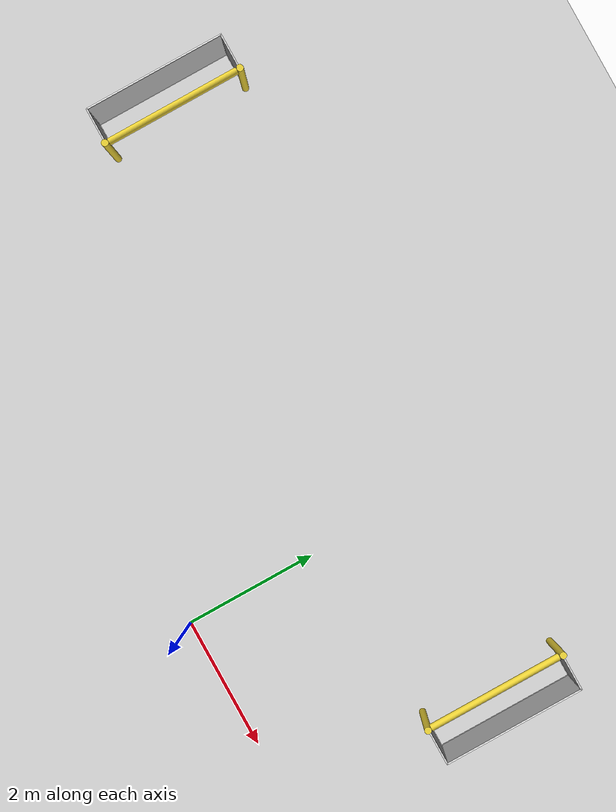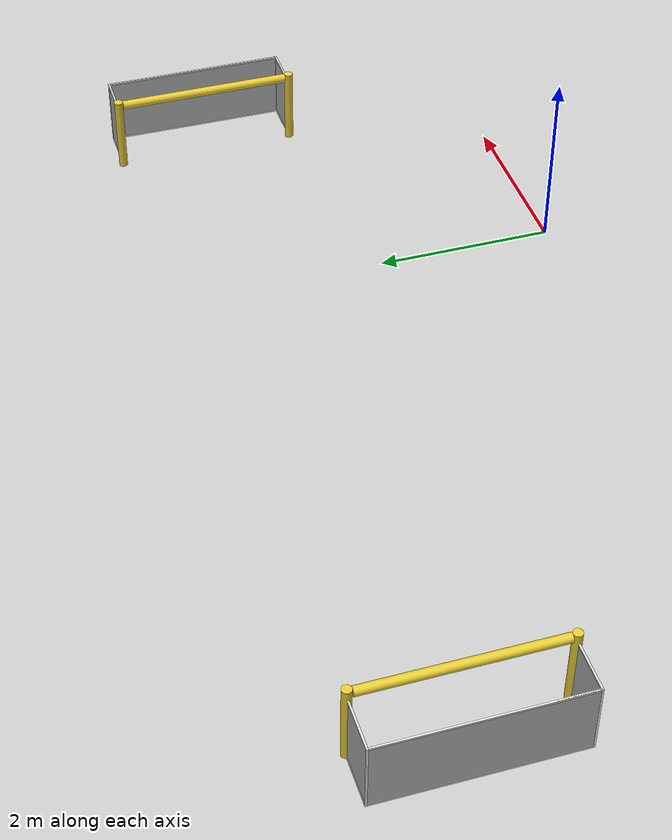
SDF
<sdf version="1.7">
 <world name="default">
  <light name="sun" type="directional">
   <pose>0 0 10 0 -0 0</pose>
   <diffuse>0.8 0.8 0.8 1</diffuse>
   <specular>0.2 0.2 0.2 1</specular>
   <attenuation>
    <range>1000</range>
    <constant>0.9</constant>
    <linear>0.01</linear>
    <quadratic>0.001</quadratic>
   </attenuation>
   <direction>-0.5 0.1 -0.9</direction>
   <spot><inner_angle>0</inner_angle><outer_angle>0</outer_angle><falloff>0</falloff></spot>
  </light>
  <model name="ground_plane">
   <static>1</static>
   <link name="link">
    <collision name="collision">
     <geometry><plane><normal>0 0 1</normal><size>100 100</size></plane></geometry>
     <surface>
      <contact><collide_bitmask>65535</collide_bitmask></contact>
      <friction><ode><mu>100</mu><mu2>50</mu2></ode></friction>
     </surface>
    </collision>
    <visual name="visual">
     <cast_shadows>0</cast_shadows>
     <geometry><plane><normal>0 0 1</normal><size>100 100</size></plane></geometry>
     <material>
      <script><uri>file://media/materials/scripts/gazebo.material</uri><name>Gazebo/Grey</name></script>
     </material>
    </visual>
   </link>
  </model>
  <gravity>0 0 -9.8</gravity>
  <magnetic_field>6e-06 2.3e-05 -4.2e-05</magnetic_field>
  <atmosphere type="adiabatic"/>
  <physics type="ode">
   <max_step_size>0.001</max_step_size>
   <real_time_factor>1</real_time_factor>
   <real_time_update_rate>1000</real_time_update_rate>
  </physics>
  <scene><ambient>0.4 0.4 0.4 1</ambient><background>0.7 0.7 0.7 1</background><shadows>1</shadows></scene>
  <spherical_coordinates>
   <surface_model>EARTH_WGS84</surface_model>
   <latitude_deg>0</latitude_deg>
   <longitude_deg>0</longitude_deg>
   <elevation>0</elevation>
   <heading_deg>0</heading_deg>
  </spherical_coordinates>
  <model name="robocup_3d_goal">
   <static>1</static>
   <link name="left_post">
    <pose>0 1.05 0.45 0 -0 0</pose>
    <collision name="collision">
     <geometry><cylinder><radius>0.05</radius><length>0.9</length></cylinder></geometry>
    </collision>
    <visual name="visual">
     <geometry><cylinder><radius>0.05</radius><length>0.9</length></cylinder></geometry>
     <material>
      <script><uri>file://media/materials/scripts/gazebo.material</uri><name>Gazebo/ZincYellow</name></script>
     </material>
    </visual>
   </link>
   <link name="left_support_horiz_lower">
    <pose>0.3 1.05 0.01 0 -0 0</pose>
    <collision name="collision"><geometry><box><size>0.5 0.02 0.02</size></box></geometry></collision>
    <visual name="visual">
     <geometry><box><size>0.5 0.02 0.02</size></box></geometry>
     <material>
      <script><uri>file://media/materials/scripts/gazebo.material</uri><name>Gazebo/White</name></script>
     </material>
    </visual>
   </link>
   <link name="left_support_horiz_upper">
    <pose>0.3 1.05 0.79 0 -0 0</pose>
    <collision name="collision"><geometry><box><size>0.5 0.02 0.02</size></box></geometry></collision>
    <visual name="visual">
     <geometry><box><size>0.5 0.02 0.02</size></box></geometry>
     <material>
      <script><uri>file://media/materials/scripts/gazebo.material</uri><name>Gazebo/White</name></script>
     </material>
    </visual>
   </link>
   <link name="left_support_vertical">
    <pose>0.56 1.05 0.4 3.14159 1.57079 3.14159</pose>
    <collision name="collision"><geometry><box><size>0.8 0.02 0.02</size></box></geometry></collision>
    <visual name="visual">
     <geometry><box><size>0.8 0.02 0.02</size></box></geometry>
     <material>
      <script><uri>file://media/materials/scripts/gazebo.material</uri><name>Gazebo/White</name></script>
     </material>
    </visual>
   </link>
   <link name="right_support_horiz_lower">
    <pose>0.3 -1.05 0.01 0 -0 0</pose>
    <collision name="collision"><geometry><box><size>0.5 0.02 0.02</size></box></geometry></collision>
    <visual name="visual">
     <geometry><box><size>0.5 0.02 0.02</size></box></geometry>
     <material>
      <script><uri>file://media/materials/scripts/gazebo.material</uri><name>Gazebo/White</name></script>
     </material>
    </visual>
   </link>
   <link name="right_support_horiz_upper">
    <pose>0.3 -1.05 0.79 0 -0 0</pose>
    <collision name="collision"><geometry><box><size>0.5 0.02 0.02</size></box></geometry></collision>
    <visual name="visual">
     <geometry><box><size>0.5 0.02 0.02</size></box></geometry>
     <material>
      <script><uri>file://media/materials/scripts/gazebo.material</uri><name>Gazebo/White</name></script>
     </material>
    </visual>
   </link>
   <link name="right_support_vertical">
    <pose>0.56 -1.05 0.4 3.14159 1.57079 3.14159</pose>
    <collision name="collision"><geometry><box><size>0.8 0.02 0.02</size></box></geometry></collision>
    <visual name="visual">
     <geometry><box><size>0.8 0.02 0.02</size></box></geometry>
     <material>
      <script><uri>file://media/materials/scripts/gazebo.material</uri><name>Gazebo/White</name></script>
     </material>
    </visual>
   </link>
   <link name="center_support_horiz_lower">
    <pose>0.56 0 0.01 3.14159 1.57079 3.14159</pose>
    <collision name="collision"><geometry><box><size>0.02 2.08 0.02</size></box></geometry></collision>
    <visual name="visual">
     <geometry><box><size>0.02 2.08 0.02</size></box></geometry>
     <material>
      <script><uri>file://media/materials/scripts/gazebo.material</uri><name>Gazebo/White</name></script>
     </material>
    </visual>
   </link>
   <link name="center_support_horiz_upper">
    <pose>0.56 0 0.79 3.14159 1.57079 3.14159</pose>
    <collision name="collision"><geometry><box><size>0.02 2.08 0.02</size></box></geometry></collision>
    <visual name="visual">
     <geometry><box><size>0.02 2.08 0.02</size></box></geometry>
     <material>
      <script><uri>file://media/materials/scripts/gazebo.material</uri><name>Gazebo/White</name></script>
     </material>
    </visual>
   </link>
   <link name="right_post">
    <pose>0 -1.05 0.45 0 -0 0</pose>
    <collision name="collision">
     <geometry><cylinder><radius>0.05</radius><length>0.9</length></cylinder></geometry>
    </collision>
    <visual name="visual">
     <geometry><cylinder><radius>0.05</radius><length>0.9</length></cylinder></geometry>
     <material>
      <script><uri>file://media/materials/scripts/gazebo.material</uri><name>Gazebo/ZincYellow</name></script>
     </material>
    </visual>
   </link>
   <link name="crossbar">
    <pose>0 0 0.85 1.57 1.57 0</pose>
    <collision name="collision">
     <geometry><cylinder><radius>0.05</radius><length>2</length></cylinder></geometry>
    </collision>
    <visual name="visual">
     <geometry><cylinder><radius>0.05</radius><length>2</length></cylinder></geometry>
     <material>
      <script><uri>file://media/materials/scripts/gazebo.material</uri><name>Gazebo/ZincYellow</name></script>
     </material>
    </visual>
   </link>
   <link name="center_net">
    <pose>0.56 0 0.4 0 -0 0</pose>
    <collision name="collision"><geometry><box><size>0.01 2.1 0.8</size></box></geometry></collision>
    <visual name="visual">
     <geometry><box><size>0.01 2.1 0.8</size></box></geometry>
     <material>
      <script>
       <uri>model://robocup09_spl_field/materials/scripts/</uri>
       <uri>model://robocup09_spl_field/materials/textures/</uri>
       <name>RoboCup/Net</name>
      </script>
     </material>
    </visual>
   </link>
   <link name="left_net">
    <pose>0.3 1.05 0.4 0 -0 0</pose>
    <collision name="collision"><geometry><box><size>0.5 0.01 0.76</size></box></geometry></collision>
    <visual name="visual">
     <geometry><box><size>0.5 0.01 0.76</size></box></geometry>
     <material>
      <script>
       <uri>model://robocup09_spl_field/materials/scripts/</uri>
       <uri>model://robocup09_spl_field/materials/textures/</uri>
       <name>RoboCup/Net</name>
      </script>
     </material>
    </visual>
   </link>
   <link name="right_net">
    <pose>0.3 -1.05 0.4 0 -0 0</pose>
    <collision name="collision"><geometry><box><size>0.5 0.01 0.76</size></box></geometry></collision>
    <visual name="visual">
     <geometry><box><size>0.5 0.01 0.76</size></box></geometry>
     <material>
      <script>
       <uri>model://robocup09_spl_field/materials/scripts/</uri>
       <uri>model://robocup09_spl_field/materials/textures/</uri>
       <name>RoboCup/Net</name>
      </script>
     </material>
    </visual>
   </link>
   <pose>2.75025 3.35563 0 0 -0 0</pose>
  </model>
  <model name="robocup_3d_goal_0">
   <static>1</static>
   <link name="left_post">
    <pose>0 1.05 0.45 0 -0 0</pose>
    <collision name="collision">
     <geometry><cylinder><radius>0.05</radius><length>0.9</length></cylinder></geometry>
    </collision>
    <visual name="visual">
     <geometry><cylinder><radius>0.05</radius><length>0.9</length></cylinder></geometry>
     <material>
      <script><uri>file://media/materials/scripts/gazebo.material</uri><name>Gazebo/ZincYellow</name></script>
     </material>
    </visual>
   </link>
   <link name="left_support_horiz_lower">
    <pose>0.3 1.05 0.01 0 -0 0</pose>
    <collision name="collision"><geometry><box><size>0.5 0.02 0.02</size></box></geometry></collision>
    <visual name="visual">
     <geometry><box><size>0.5 0.02 0.02</size></box></geometry>
     <material>
      <script><uri>file://media/materials/scripts/gazebo.material</uri><name>Gazebo/White</name></script>
     </material>
    </visual>
   </link>
   <link name="left_support_horiz_upper">
    <pose>0.3 1.05 0.79 0 -0 0</pose>
    <collision name="collision"><geometry><box><size>0.5 0.02 0.02</size></box></geometry></collision>
    <visual name="visual">
     <geometry><box><size>0.5 0.02 0.02</size></box></geometry>
     <material>
      <script><uri>file://media/materials/scripts/gazebo.material</uri><name>Gazebo/White</name></script>
     </material>
    </visual>
   </link>
   <link name="left_support_vertical">
    <pose>0.56 1.05 0.4 3.14159 1.57079 3.14159</pose>
    <collision name="collision"><geometry><box><size>0.8 0.02 0.02</size></box></geometry></collision>
    <visual name="visual">
     <geometry><box><size>0.8 0.02 0.02</size></box></geometry>
     <material>
      <script><uri>file://media/materials/scripts/gazebo.material</uri><name>Gazebo/White</name></script>
     </material>
    </visual>
   </link>
   <link name="right_support_horiz_lower">
    <pose>0.3 -1.05 0.01 0 -0 0</pose>
    <collision name="collision"><geometry><box><size>0.5 0.02 0.02</size></box></geometry></collision>
    <visual name="visual">
     <geometry><box><size>0.5 0.02 0.02</size></box></geometry>
     <material>
      <script><uri>file://media/materials/scripts/gazebo.material</uri><name>Gazebo/White</name></script>
     </material>
    </visual>
   </link>
   <link name="right_support_horiz_upper">
    <pose>0.3 -1.05 0.79 0 -0 0</pose>
    <collision name="collision"><geometry><box><size>0.5 0.02 0.02</size></box></geometry></collision>
    <visual name="visual">
     <geometry><box><size>0.5 0.02 0.02</size></box></geometry>
     <material>
      <script><uri>file://media/materials/scripts/gazebo.material</uri><name>Gazebo/White</name></script>
     </material>
    </visual>
   </link>
   <link name="right_support_vertical">
    <pose>0.56 -1.05 0.4 3.14159 1.57079 3.14159</pose>
    <collision name="collision"><geometry><box><size>0.8 0.02 0.02</size></box></geometry></collision>
    <visual name="visual">
     <geometry><box><size>0.8 0.02 0.02</size></box></geometry>
     <material>
      <script><uri>file://media/materials/scripts/gazebo.material</uri><name>Gazebo/White</name></script>
     </material>
    </visual>
   </link>
   <link name="center_support_horiz_lower">
    <pose>0.56 0 0.01 3.14159 1.57079 3.14159</pose>
    <collision name="collision"><geometry><box><size>0.02 2.08 0.02</size></box></geometry></collision>
    <visual name="visual">
     <geometry><box><size>0.02 2.08 0.02</size></box></geometry>
     <material>
      <script><uri>file://media/materials/scripts/gazebo.material</uri><name>Gazebo/White</name></script>
     </material>
    </visual>
   </link>
   <link name="center_support_horiz_upper">
    <pose>0.56 0 0.79 3.14159 1.57079 3.14159</pose>
    <collision name="collision"><geometry><box><size>0.02 2.08 0.02</size></box></geometry></collision>
    <visual name="visual">
     <geometry><box><size>0.02 2.08 0.02</size></box></geometry>
     <material>
      <script><uri>file://media/materials/scripts/gazebo.material</uri><name>Gazebo/White</name></script>
     </material>
    </visual>
   </link>
   <link name="right_post">
    <pose>0 -1.05 0.45 0 -0 0</pose>
    <collision name="collision">
     <geometry><cylinder><radius>0.05</radius><length>0.9</length></cylinder></geometry>
    </collision>
    <visual name="visual">
     <geometry><cylinder><radius>0.05</radius><length>0.9</length></cylinder></geometry>
     <material>
      <script><uri>file://media/materials/scripts/gazebo.material</uri><name>Gazebo/ZincYellow</name></script>
     </material>
    </visual>
   </link>
   <link name="crossbar">
    <pose>0 0 0.85 1.57 1.57 0</pose>
    <collision name="collision">
     <geometry><cylinder><radius>0.05</radius><length>2</length></cylinder></geometry>
    </collision>
    <visual name="visual">
     <geometry><cylinder><radius>0.05</radius><length>2</length></cylinder></geometry>
     <material>
      <script><uri>file://media/materials/scripts/gazebo.material</uri><name>Gazebo/ZincYellow</name></script>
     </material>
    </visual>
   </link>
   <link name="center_net">
    <pose>0.56 0 0.4 0 -0 0</pose>
    <collision name="collision"><geometry><box><size>0.01 2.1 0.8</size></box></geometry></collision>
    <visual name="visual">
     <geometry><box><size>0.01 2.1 0.8</size></box></geometry>
     <material>
      <script>
       <uri>model://robocup09_spl_field/materials/scripts/</uri>
       <uri>model://robocup09_spl_field/materials/textures/</uri>
       <name>RoboCup/Net</name>
      </script>
     </material>
    </visual>
   </link>
   <link name="left_net">
    <pose>0.3 1.05 0.4 0 -0 0</pose>
    <collision name="collision"><geometry><box><size>0.5 0.01 0.76</size></box></geometry></collision>
    <visual name="visual">
     <geometry><box><size>0.5 0.01 0.76</size></box></geometry>
     <material>
      <script>
       <uri>model://robocup09_spl_field/materials/scripts/</uri>
       <uri>model://robocup09_spl_field/materials/textures/</uri>
       <name>RoboCup/Net</name>
      </script>
     </material>
    </visual>
   </link>
   <link name="right_net">
    <pose>0.3 -1.05 0.4 0 -0 0</pose>
    <collision name="collision"><geometry><box><size>0.5 0.01 0.76</size></box></geometry></collision>
    <visual name="visual">
     <geometry><box><size>0.5 0.01 0.76</size></box></geometry>
     <material>
      <script>
       <uri>model://robocup09_spl_field/materials/scripts/</uri>
       <uri>model://robocup09_spl_field/materials/textures/</uri>
       <name>RoboCup/Net</name>
      </script>
     </material>
    </visual>
   </link>
   <pose>-6.36 3.3924 0 0 -0 3.14159</pose>
  </model>
 </world>
</sdf>
